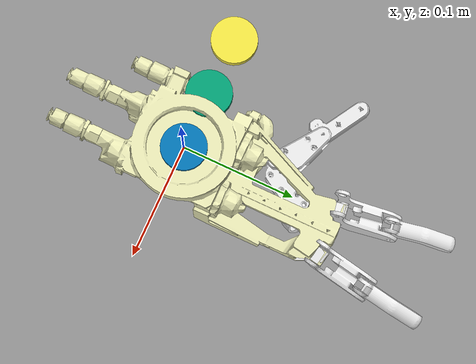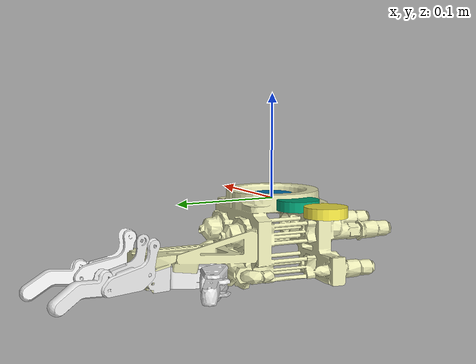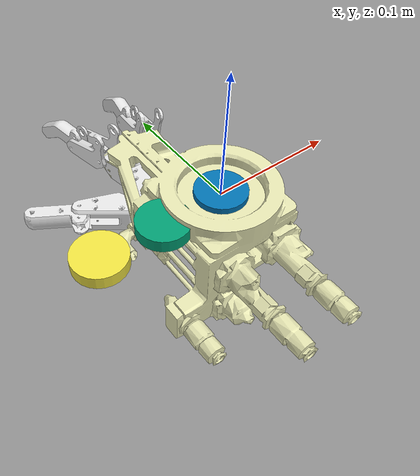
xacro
<?xml version="1.0"?>
<robot name="avatar_gripper_3f_model" xmlns:xacro="http://ros.org/wiki/xacro">
  <xacro:arg name="mimic" default="true"/>
  <xacro:arg name="prefix" default="right"/>
  <xacro:arg name="motor_base_attach_to" default="right_gripper_base"/>

  <xacro:include filename="$(find avatar_gripper_description)/urdf/avatar_gripper_3f_macro.xacro" />

  <xacro:avatar_gripper_3f prefix="$(arg prefix)" motor_base_attach_to="$(arg motor_base_attach_to)"/>
  <xacro:macro name="attach_gripper" params="connected_to:='' arm_id='panda' gripper_prefix:='' rpy:='0 0 0' xyz:='0 0 0'">
    <xacro:unless value="${connected_to == ''}">
      <joint name="${arm_id}_gripper_joint" type="fixed">
        <parent link="${connected_to}" />
        <child link="${gripper_prefix}_gripper_base" />
        <origin xyz="${xyz}" rpy="${rpy}" />
      </joint>
    </xacro:unless>
  </xacro:macro>
</robot>

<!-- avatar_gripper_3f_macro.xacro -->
<robot xmlns:xacro="http://ros.org/wiki/xacro">

  <xacro:macro name="gripper_base_link" params="prefix">
    <link name="${prefix}_gripper_base">
      <inertial>
        <mass value="2.0"/>
        <inertia ixx="7.11E-3" ixy="0.0" ixz="0.0" iyy="7.11E-3" iyz="0.0" izz="7.11E-3"/>
      </inertial>
      <visual>
        <origin xyz="0 0 0" rpy="0 0 0"/>
        <geometry>
          <mesh filename="package://avatar_gripper_description/meshes/${prefix}/gripper_base.STL"/>
        </geometry>
        <material name="">
          <color rgba="0.9 0.9 0.7 1"/>
        </material>
      </visual>
      <collision>
        <origin xyz="0 0 -0.03" rpy="0 0 0"/>
        <geometry>
          <box size="0.1 0.1 0.06"/>
        </geometry>
      </collision>
    </link>
  </xacro:macro>

  <xacro:macro name="thumb_base_link" params="prefix">
    <link name="${prefix}_thumb_base">
      <inertial>
        <mass value="0.5"/>
        <inertia ixx="4E-5" ixy="0.0" ixz="0.0" iyy="4E-5" iyz="0.0" izz="4E-5"/>
      </inertial>
      <visual>
        <origin xyz="0 0 0" rpy="0 0 0"/>
        <geometry>
          <mesh filename="package://avatar_gripper_description/meshes/${prefix}/thumb_base_extra.STL"/>
        </geometry>
        <material name="">
          <color rgba="0.9 0.9 0.9 1"/>
        </material>
      </visual>
      <collision>
        <origin xyz="0 0 0" rpy="0 0 0"/>
        <geometry>
          <mesh filename="package://avatar_gripper_description/meshes/${prefix}/thumb_base_extra.STL"/>
        </geometry>
      </collision>
    </link>
  </xacro:macro>

  <xacro:macro name="thumb_knuckle_link" params="prefix">
    <link name="${prefix}_thumb_knuckle">
      <inertial>
        <mass value="0.5"/>
        <inertia ixx="4E-5" ixy="0.0" ixz="0.0" iyy="4E-5" iyz="0.0" izz="4E-5"/>
      </inertial>
      <visual>
        <origin xyz="0 0 0" rpy="0 0 0"/>
        <geometry>
          <mesh filename="package://avatar_gripper_description/meshes/${prefix}/thumb_knuckle.STL"/>
        </geometry>
        <material name="">
          <color rgba="0.9 0.9 0.9 1"/>
        </material>
      </visual>
      <collision>
        <origin xyz="0 0 0" rpy="0 0 0"/>
        <geometry>
          <mesh filename="package://avatar_gripper_description/meshes/${prefix}/thumb_knuckle.STL"/>
        </geometry>
      </collision>
    </link>
  </xacro:macro>

  <xacro:macro name="thumb_finger_link" params="prefix">
    <link name="${prefix}_thumb_finger">
      <inertial>
        <mass value="0.5"/>
        <inertia ixx="4E-5" ixy="0.0" ixz="0.0" iyy="4E-5" iyz="0.0" izz="4E-5"/>
      </inertial>
      <visual>
        <origin xyz="0 0 0" rpy="0 0 0"/>
        <geometry>
          <mesh filename="package://avatar_gripper_description/meshes/${prefix}/thumb_fingertip.STL"/>
        </geometry>
        <material name="">
          <color rgba="0.9 0.9 0.9 1"/>
        </material>
      </visual>
      <collision>
        <origin xyz="0 0 0" rpy="0 0 0"/>
        <geometry>
          <mesh filename="package://avatar_gripper_description/meshes/${prefix}/thumb_fingertip.STL"/>
        </geometry>
      </collision>
    </link>
  </xacro:macro>

  <xacro:macro name="index_base_connector" params="prefix">
    <link name="${prefix}_index_base_connector">
      <inertial>
        <mass value="0.02"/>
        <inertia ixx="4E-5" ixy="0.0" ixz="0.0" iyy="4E-5" iyz="0.0" izz="4E-5"/>
      </inertial>
      <visual>
        <origin xyz="0 0 0" rpy="0 0 0"/>
        <geometry>
          <mesh filename="package://avatar_gripper_description/meshes/${prefix}/index_base_connector.STL"/>
        </geometry>
        <material name="">
          <color rgba="0.9 0.9 0.9 1"/>
        </material>
      </visual>
    </link>
  </xacro:macro>

  <xacro:macro name="index_knuckle" params="prefix">
    <link name="${prefix}_index_knuckle">
      <inertial>
        <mass value="0.5"/>
        <inertia ixx="4E-5" ixy="0.0" ixz="0.0" iyy="4E-5" iyz="0.0" izz="4E-5"/>
      </inertial>
      <visual>
        <origin xyz="0 0 0" rpy="0 0 0"/>
        <geometry>
          <mesh filename="package://avatar_gripper_description/meshes/${prefix}/index_knuckle.STL"/>
        </geometry>
        <material name="">
          <color rgba="0.9 0.9 0.9 1"/>
        </material>
      </visual>
      <collision>
        <origin xyz="0 0 0" rpy="0 0 0"/>
        <geometry>
          <mesh filename="package://avatar_gripper_description/meshes/${prefix}/index_knuckle.STL"/>
        </geometry>
      </collision>
    </link>
  </xacro:macro>

  <xacro:macro name="index_fingertip" params="prefix">
    <link name="${prefix}_index_fingertip">
      <inertial>
        <mass value="0.5"/>
        <inertia ixx="4E-5" ixy="0.0" ixz="0.0" iyy="4E-5" iyz="0.0" izz="4E-5"/>
      </inertial>
      <visual>
        <origin xyz="0 0 0" rpy="0 0 0"/>
        <geometry>
          <mesh filename="package://avatar_gripper_description/meshes/${prefix}/index_fingertip.STL"/>
        </geometry>
        <material name="">
          <color rgba="0.9 0.9 0.9 1"/>
        </material>
      </visual>
      <collision>
        <origin xyz="0 0 0" rpy="0 0 0"/>
        <geometry>
          <mesh filename="package://avatar_gripper_description/meshes/${prefix}/index_fingertip.STL"/>
        </geometry>
      </collision>
    </link>
  </xacro:macro>

  <xacro:macro name="middle_knuckle" params="prefix">
    <link name="${prefix}_middle_knuckle">
      <inertial>
        <mass value="0.5"/>
        <inertia ixx="4E-5" ixy="0.0" ixz="0.0" iyy="4E-5" iyz="0.0" izz="4E-5"/>
      </inertial>
      <visual>
        <origin xyz="0 0 0" rpy="0 0 0"/>
        <geometry>
          <mesh filename="package://avatar_gripper_description/meshes/${prefix}/index_knuckle.STL"/>
        </geometry>
        <material name="">
          <color rgba="0.9 0.9 0.9 1"/>
        </material>
      </visual>
      <collision>
        <origin xyz="0 0 0" rpy="0 0 0"/>
        <geometry>
          <mesh filename="package://avatar_gripper_description/meshes/${prefix}/index_knuckle.STL"/>
        </geometry>
      </collision>
    </link>
  </xacro:macro>

  <xacro:macro name="middle_fingertip" params="prefix">
    <link name="${prefix}_middle_fingertip">
      <inertial>
        <mass value="0.5"/>
        <inertia ixx="4E-5" ixy="0.0" ixz="0.0" iyy="4E-5" iyz="0.0" izz="4E-5"/>
      </inertial>
      <visual>
        <origin xyz="0 0 0" rpy="0 0 0"/>
        <geometry>
          <mesh filename="package://avatar_gripper_description/meshes/${prefix}/index_fingertip.STL"/>
        </geometry>
        <material name="">
          <color rgba="0.9 0.9 0.9 1"/>
        </material>
      </visual>
      <collision>
        <origin xyz="0 0 0" rpy="0 0 0"/>
        <geometry>
          <mesh filename="package://avatar_gripper_description/meshes/${prefix}/index_fingertip.STL"/>
        </geometry>
      </collision>
    </link>
  </xacro:macro>

  <xacro:macro name="thumb_swivel_link" params="prefix">
    <link name="${prefix}_thumb_swivel_link">
      <inertial>
        <mass value="0.1"/>
        <inertia ixx="4E-5" ixy="0.0" ixz="0.0" iyy="4E-5" iyz="0.0" izz="4E-5"/>
      </inertial>
      <visual>
        <origin xyz="0 0 0" rpy="0 0 0"/>
        <geometry>
          <mesh filename="package://avatar_gripper_description/meshes/${prefix}/thumb_swivel_link.STL"/>
        </geometry>
        <material name="">
          <color rgba="0.9 0.9 0.9 1"/>
        </material>
      </visual>
      <collision>
        <origin xyz="0 0 0" rpy="0 0 0"/>
        <geometry>
          <mesh filename="package://avatar_gripper_description/meshes/${prefix}/thumb_swivel_link.STL"/>
        </geometry>
      </collision>
    </link>
  </xacro:macro>

  <!-- joints  -->
  <xacro:macro name="thumb_knuckle_joint" params="prefix">
    <joint name="${prefix}_thumb_knuckle_joint" type="revolute">
      <origin xyz="0 0 0" rpy="0 2.75 0"/>
      <parent link="${prefix}_thumb_base"/>
      <child link="${prefix}_thumb_knuckle"/>
      <axis xyz="0 1 0"/>
      <limit lower="-1.0" upper="0.4" velocity="2.0" effort="1000" />
      <xacro:if value="$(arg mimic)">
        <mimic joint="${prefix}_thumb_flex_motor_joint" offset="0" multiplier="0.28"/>
      </xacro:if>
    </joint>
  </xacro:macro>

  <xacro:macro name="thumb_finger_joint" params="prefix">
    <joint name="${prefix}_thumb_finger_joint" type="revolute">
      <origin xyz="0.04568 0 0.01106" rpy="0 0.57 0"/>
      <parent link="${prefix}_thumb_knuckle"/>
      <child link="${prefix}_thumb_finger"/>
      <axis xyz="0 1 0"/>
      <limit lower="-0.8" upper="0" velocity="2.0" effort="1000" />
      <xacro:if value="$(arg mimic)">
        <mimic joint="${prefix}_thumb_flex_motor_joint" offset="0" multiplier="0.24"/>
      </xacro:if>
    </joint>
  </xacro:macro>

  <xacro:macro name="thumb_base_swivel_joint" params="prefix">
    <joint name="${prefix}_thumb_base_swivel_joint" type="fixed">
      <origin xyz="-0.03742 0 0.05089" rpy="0 0 0"/>
      <parent link="${prefix}_thumb_swivel_link"/>
      <child link="${prefix}_thumb_base"/>
    </joint>
  </xacro:macro>

  <xacro:macro name="thumb_swivel_joint" params="prefix">
    <joint name="${prefix}_thumb_swivel_joint" type="revolute">
      <xacro:if value="${prefix == 'left'}">
        <origin xyz="0 0 0.0173" rpy="0 0 0.7853"/>
      </xacro:if>
      <xacro:if value="${prefix == 'right'}">
        <origin xyz="0 0 0.0173" rpy="0 0 0"/>
      </xacro:if>
      <parent link="${prefix}_index_base_connector"/>
      <child link="${prefix}_thumb_swivel_link"/>
      <axis xyz="0 0 1"/>
      <limit lower="0" upper="1.7" velocity="2.0" effort="1000" />
      <xacro:if value="$(arg mimic)">
        <mimic joint="${prefix}_thumb_swivel_motor_joint" offset="0.43" multiplier="-0.6075"/>
      </xacro:if>
    </joint>
  </xacro:macro>

  <xacro:macro name="index_knuckle_joint" params="prefix">
    <joint name="${prefix}_index_knuckle_joint" type="revolute">
      <xacro:if value="${prefix == 'left'}">
        <origin xyz="+0.021564878 0.008545 -0.0024358" rpy="1.19730672 1.07478656 1.15162329"/>
      </xacro:if>
      <xacro:if value="${prefix == 'right'}">
        <origin xyz="-0.021564878 0.008545 -0.0024358" rpy="1.94428593 1.07478656 1.98996937"/>
      </xacro:if>
      <parent link="${prefix}_index_base_connector"/>
      <child link="${prefix}_index_knuckle"/>
      <axis xyz="0 0 1"/>
      <limit lower="-0.8" upper="0" velocity="2.0" effort="1000" />
      <xacro:if value="$(arg mimic)">
        <mimic joint="${prefix}_index_flex_motor_joint" offset="0" multiplier="0.4016"/>
      </xacro:if>
    </joint>
  </xacro:macro>

  <xacro:macro name="index_fingertip_joint" params="prefix">
    <joint name="${prefix}_index_fingertip_joint" type="revolute">
      <origin xyz="0.0353829 -0.02780 0" rpy="0 0 -0.35"/>
      <parent link="${prefix}_index_knuckle"/>
      <child link="${prefix}_index_fingertip"/>
      <axis xyz="0 0 1"/>
      <limit lower="-0.8" upper="0" velocity="2.0" effort="1000" />
      <xacro:if value="$(arg mimic)">
        <mimic joint="${prefix}_index_flex_motor_joint" offset="0" multiplier="0.4"/>
      </xacro:if>
    </joint>
  </xacro:macro>
  <xacro:macro name="middle_knuckle_joint" params="prefix">
    <joint name="${prefix}_middle_knuckle_joint" type="revolute">
      <xacro:if value="${prefix == 'left'}">
        <origin xyz="-0.02156 0.008545 -0.0024358" rpy="1.94428593 1.07478656 1.98996937"/>
      </xacro:if>
      <xacro:if value="${prefix == 'right'}">
        <origin xyz="0.02156 0.008545 -0.0024358" rpy="1.19730672 1.07478656 1.15162329"/>
      </xacro:if>
      <parent link="${prefix}_index_base_connector"/>
      <child link="${prefix}_middle_knuckle"/>
      <axis xyz="0 0 1"/>
      <limit lower="-0.8" upper="0" velocity="2.0" effort="1000" />
      <xacro:if value="$(arg mimic)">
        <mimic joint="${prefix}_index_knuckle_joint" offset="0" multiplier="1"/>
      </xacro:if>
    </joint>
  </xacro:macro>

  <xacro:macro name="middle_fingertip_joint" params="prefix">
    <joint name="${prefix}_middle_fingertip_joint" type="revolute">
      <origin xyz="0.0353829 -0.02780 0" rpy="0 0 -0.35"/>
      <parent link="${prefix}_middle_knuckle"/>
      <child link="${prefix}_middle_fingertip"/>
      <axis xyz="0 0 1"/>
      <limit lower="-0.8" upper="0" velocity="2.0" effort="1000" />
      <xacro:if value="$(arg mimic)">
        <mimic joint="${prefix}_index_fingertip_joint" offset="0" multiplier="1"/>
      </xacro:if>
    </joint>
  </xacro:macro>

  <xacro:macro name="gripper_base_joint" params="prefix">
    <joint name="${prefix}_gripper_base_joint" type="fixed">
      <xacro:if value="${prefix == 'left'}">
        <origin xyz="-0.00736 0.139 -0.066017" rpy="1.57 0 0"/>
      </xacro:if>
      <xacro:if value="${prefix == 'right'}">
        <origin xyz="0.00736 0.139 -0.066017" rpy="1.57 0 0"/>
      </xacro:if>
      <parent link="${prefix}_gripper_base"/>
      <child link="${prefix}_index_base_connector"/>
    </joint>
  </xacro:macro>

  <!-- actuator links -->
  <xacro:macro name="motor_link" params="prefix actuation">
    <link name="${prefix}_${actuation}_motor">
      <inertial>
        <mass value="0.25"/>
        <inertia ixx="1.463E-04" ixy="0" ixz="0" iyy="1.463E-04" iyz="0" izz="1.463E-04"/>
      </inertial>
      <visual>
        <origin xyz="0 0 0" rpy="0 0 0"/>
        <geometry>
          <cylinder radius="0.02" length="0.01"/>
        </geometry>
      </visual>
    </link>
  </xacro:macro>

  <!-- actuator joints -->
  <xacro:macro name="index_flex_motor_joint" params="prefix motor_base_attach_to">
    <joint name="${prefix}_index_flex_motor_joint" type="revolute">
      <origin xyz="0.0 0.0 0.0" rpy="0 0 0"/>
      <parent link="${motor_base_attach_to}"/>
      <child link="${prefix}_index_flex_motor"/>
      <axis xyz="0 0 1"/>
      <limit lower="-2.3" upper="-0.08" velocity="2.0" effort="1000" />
    </joint>
  </xacro:macro>

  <xacro:macro name="thumb_flex_motor_joint" params="prefix motor_base_attach_to">
    <joint name="${prefix}_thumb_flex_motor_joint" type="revolute">
      <origin xyz="-0.05 0.0 0.0" rpy="0 0 0"/>
      <parent link="${motor_base_attach_to}"/>
      <child link="${prefix}_thumb_flex_motor"/>
      <axis xyz="0 0 1"/>
      <limit lower="-2.3" upper="-0.08" velocity="2.0" effort="1000" />
    </joint>
  </xacro:macro>

  <xacro:macro name="thumb_swivel_motor_joint" params="prefix motor_base_attach_to">
    <joint name="${prefix}_thumb_swivel_motor_joint" type="revolute">
      <origin xyz="-0.1 0.0 0.0" rpy="0 0 0"/>
      <parent link="${motor_base_attach_to}"/>
      <child link="${prefix}_thumb_swivel_motor"/>
      <axis xyz="0 0 1"/>
      <limit lower="-2.3" upper="-0.05" velocity="2.0" effort="1000" />
    </joint>
  </xacro:macro>

  <xacro:macro name="avatar_gripper_3f" params="prefix motor_base_attach_to">
    <xacro:thumb_base_link prefix="${prefix}"/>
    <xacro:thumb_knuckle_link prefix="${prefix}"/>
    <xacro:thumb_knuckle_joint prefix="${prefix}"/>
    <xacro:thumb_finger_link prefix="${prefix}"/>
    <xacro:thumb_finger_joint prefix="${prefix}"/>
    <xacro:thumb_swivel_link prefix="${prefix}"/>
    <xacro:thumb_swivel_joint prefix="${prefix}"/>
    <xacro:thumb_base_swivel_joint prefix="${prefix}"/>
    <xacro:index_base_connector prefix="${prefix}"/>
    <xacro:index_knuckle prefix="${prefix}"/>
    <xacro:index_knuckle_joint prefix="${prefix}"/>
    <xacro:index_fingertip prefix="${prefix}"/>
    <xacro:index_fingertip_joint prefix="${prefix}"/>
    <xacro:middle_knuckle prefix="${prefix}"/>
    <xacro:middle_knuckle_joint prefix="${prefix}"/>
    <xacro:middle_fingertip prefix="${prefix}"/>
    <xacro:middle_fingertip_joint prefix="${prefix}"/>
    <xacro:gripper_base_link prefix="${prefix}"/>
    <xacro:gripper_base_joint prefix="${prefix}"/>

    <xacro:motor_link prefix="${prefix}" actuation="thumb_flex"/>
    <xacro:thumb_flex_motor_joint prefix="${prefix}" motor_base_attach_to="${motor_base_attach_to}"/>
    <xacro:motor_link prefix="${prefix}" actuation="thumb_swivel"/>
    <xacro:thumb_swivel_motor_joint prefix="${prefix}" motor_base_attach_to="${motor_base_attach_to}"/>
    <xacro:motor_link prefix="${prefix}" actuation="index_flex"/>
    <xacro:index_flex_motor_joint prefix="${prefix}" motor_base_attach_to="${motor_base_attach_to}"/>
  </xacro:macro>
</robot>
